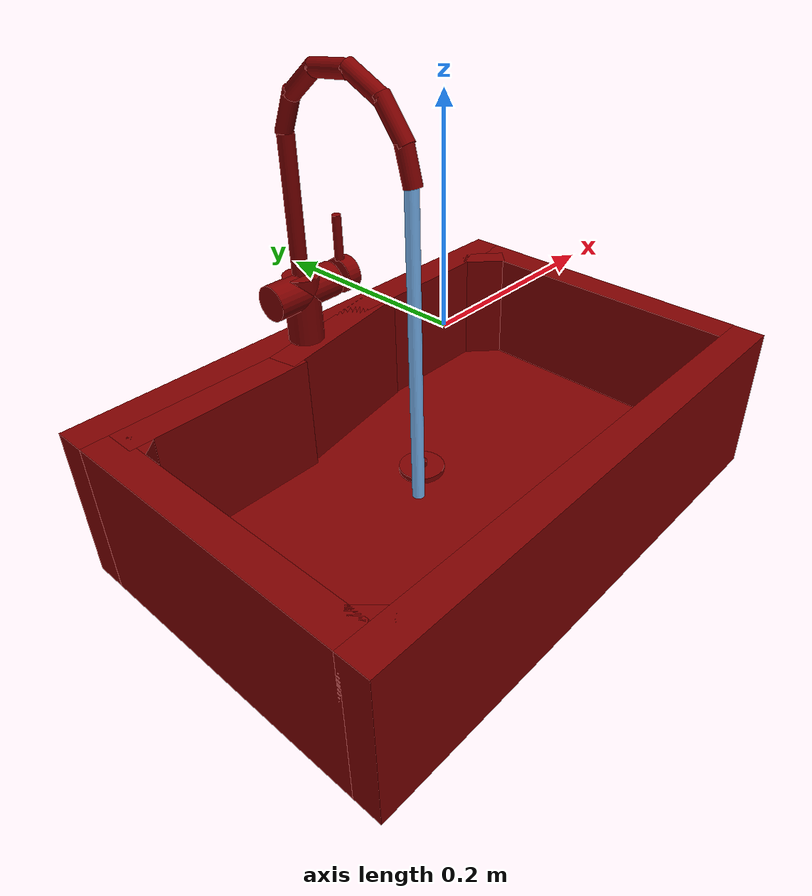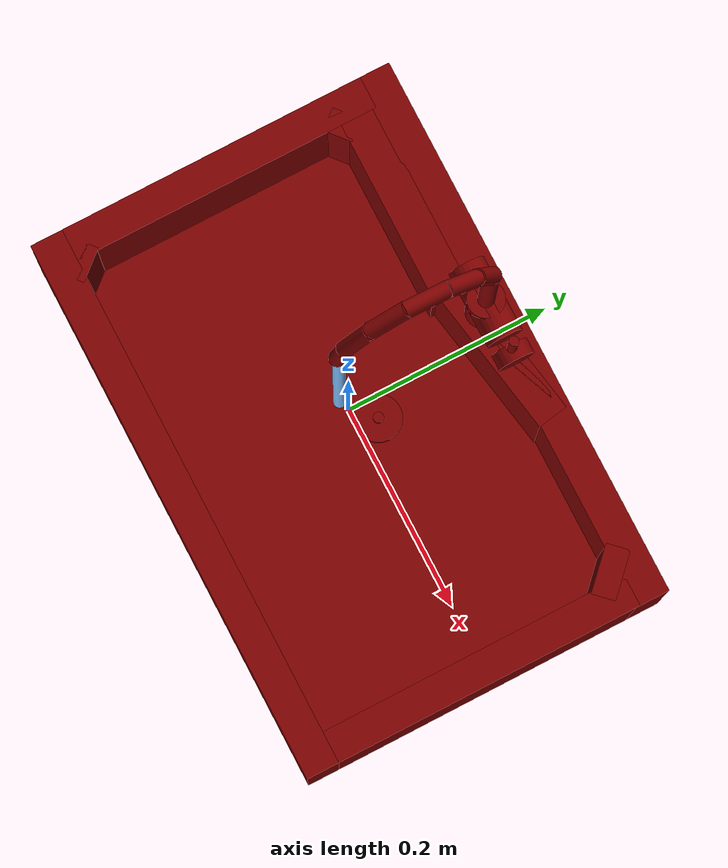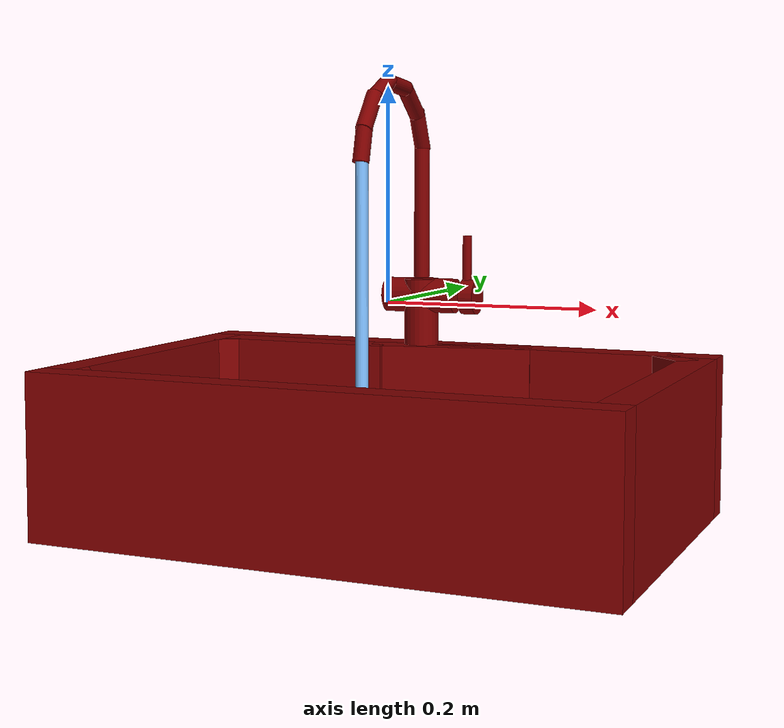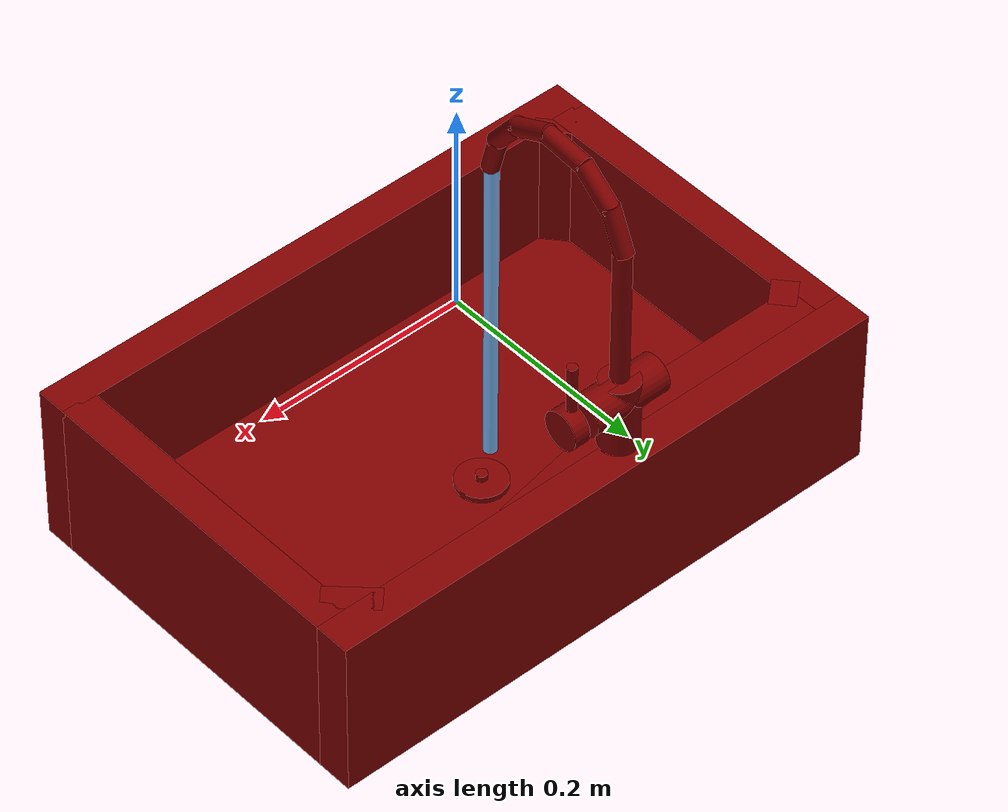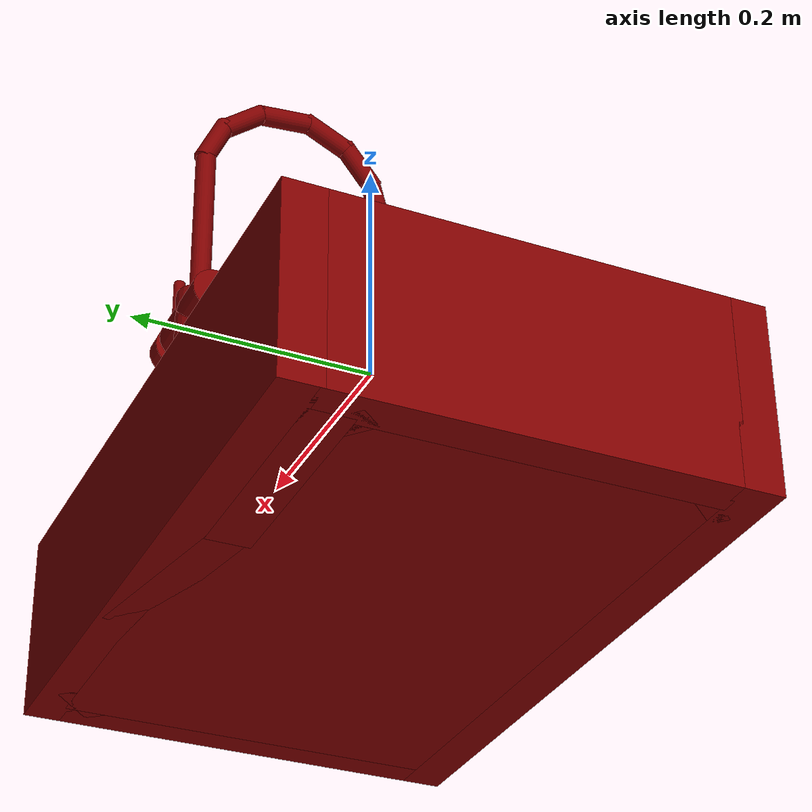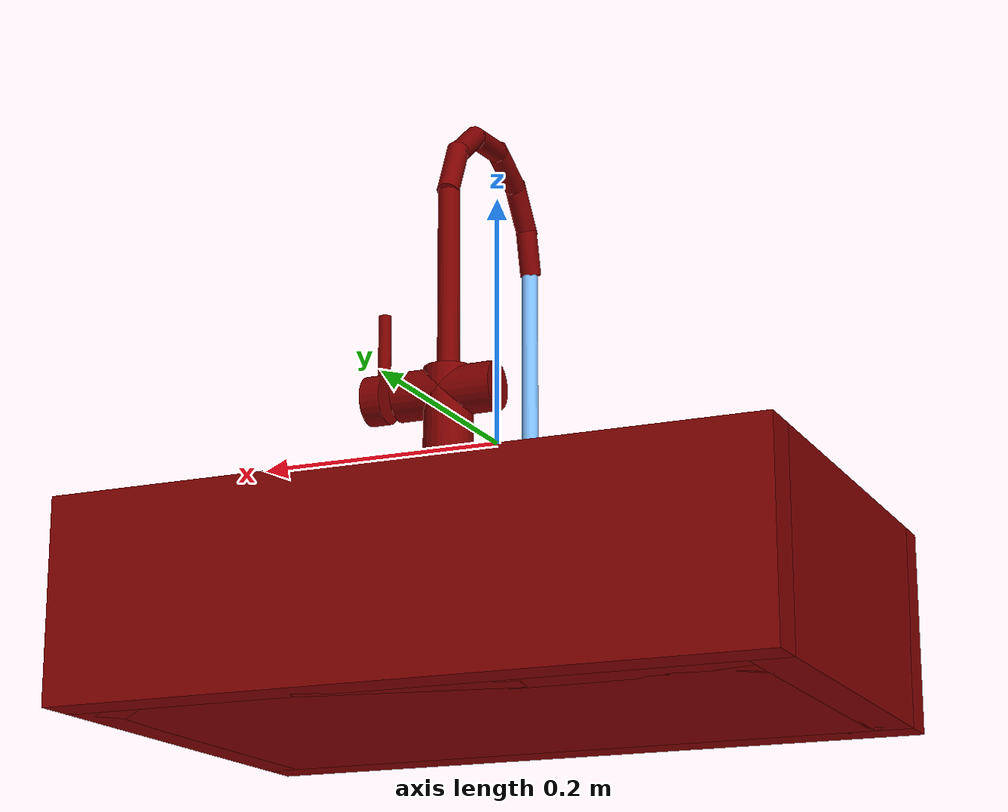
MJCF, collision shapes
<mujoco model="model">
  <compiler angle="radian"/>
  <asset>
    <mesh file="visuals/handle.obj" name="handle_vis"/>
    <mesh file="visuals/Body001.obj" name="Body001_vis"/>
    <mesh file="visuals/Funnel001.obj" name="Funnel001_vis"/>
    <mesh file="visuals/spout.obj" name="spout_vis"/>
    <texture file="visuals/T_BC001.png" name="Body001_material" type="2d"/>
    <material name="Body001_material" rgba="1 1 1 1.0" texture="Body001_material" shininess="0.4472135901451111" specular="0.3103448502657381"/>
    <texture file="visuals/T_BC001.png" name="handle_material" type="2d"/>
    <material name="handle_material" rgba="1 1 1 1.0" texture="handle_material" shininess="0.4472135901451111" specular="0.3103448502657381"/>
    <texture file="visuals/T_BC001.png" name="Funnel001_material" type="2d"/>
    <material name="Funnel001_material" rgba="1 1 1 1.0" texture="Funnel001_material" shininess="0.4472135901451111" specular="0.3103448502657381"/>
    <texture file="visuals/T_BC001.png" name="spout_material" type="2d"/>
    <material name="spout_material" rgba="1 1 1 1.0" texture="spout_material" shininess="0.4472135901451111" specular="0.3103448502657381"/>
  </asset>
  <default>
    <default class="visual">
      <geom conaffinity="0" contype="0" group="1" type="mesh"/>
    </default>
    <default class="collision">
      <geom group="0" rgba="0.5 0 0 0.5"/>
    </default>
    <default class="spawn">
      <geom group="0" rgba="1 1 1 0.5" contype="0" conaffinity="0"/>
      <site group="0" rgba="1 1 1 0.5"/>
    </default>
    <default class="region">
      <geom group="1" conaffinity="0" contype="0" rgba="0 1 0 0"/>
    </default>
  </default>
  <worldbody>
    <body>
      <body name="object">
        <geom mesh="Body001_vis" type="mesh" solimp="0.998 0.998 0.001" solref="0.001 1" density="100" friction="0.95 0.3 0.1" class="visual" material="Body001_material"/>
        <geom class="collision" type="box" pos="1.4057150110602379e-08 -0.16959254443645477 -0.13596001267433167" size="0.27581730484962463 0.01626265048980713 0.07840858399868011" quat="1.0 0.0 0.0 0.0"/>
        <geom class="collision" type="box" pos="-0.2598166763782501 -0.00048828125 -0.13596001267433167" size="0.016000591218471527 0.1563325673341751 0.07840858399868011" quat="1.0 0.0 0.0 0.0"/>
        <geom class="collision" type="box" pos="1.4057150110602379e-08 0.16901056468486786 -0.13596001267433167" size="0.27581730484962463 0.016844628378748894 0.07840858399868011" quat="1.0 0.0 0.0 0.0"/>
        <geom class="collision" type="box" pos="-0.15590538084506989 0.137120321393013 -0.13596001267433167" size="0.09381996095180511 0.017615949735045433 0.07840858399868011" quat="1.0 0.0 0.0 0.0"/>
        <geom class="collision" type="box" pos="0.0037353523075580597 0.15152469277381897 -0.13596001267433167" size="0.08369666337966919 0.01544155739247799 0.07840858399868011" quat="0.9960950613021851 0.0 0.0 0.08828743547201157"/>
        <geom class="collision" type="box" pos="0.25998401641845703 -0.00048828125 -0.13596001267433167" size="0.015833253040909767 0.1563325673341751 0.07840857654809952" quat="1.0 0.0 0.0 0.0"/>
        <geom class="collision" type="box" pos="-0.2439178228378296 0.12083550542593002 -0.13596001267433167" size="0.014547471888363361 0.011633210815489292 0.07840857654809952" quat="0.9380559325218201 0.0 0.0 0.34648385643959045"/>
        <geom class="collision" type="box" pos="-0.23990249633789062 -0.14929364621639252 -0.13596001267433167" size="0.007563177030533552 0.01742745377123356 0.07840858399868011" quat="0.9380559325218201 0.0 0.0 0.34648385643959045"/>
        <geom class="collision" type="box" pos="0.23624864220619202 0.14649027585983276 -0.13596001267433167" size="0.02430211752653122 0.011633211746811867 0.07840857654809952" quat="0.9271064400672913 0.0 0.0 -0.37479814887046814"/>
        <geom class="collision" type="box" pos="0.001804158091545105 0.0025504976511001587 -0.19704565405845642" size="0.24809125065803528 0.15592600405216217 0.017322935163974762" quat="1.0 0.0 0.0 0.0"/>
        <geom class="collision" type="cylinder" pos="-0.030668478459119797 0.15602917969226837 -0.006646901369094849" size="0.01782768778502941 0.037851620465517044" quat="0.7071068286895752 0.0 -0.7071067690849304 0.0"/>
        <geom class="collision" type="cylinder" pos="-0.030807096511125565 0.15602917969226837 -0.023696957156062126" size="0.01782768778502941 0.034247539937496185" quat="1.0 0.0 0.0 0.0"/>
        <body name="handle">
          <joint axis="1.0 0.0 0.0" pos="0.0211646631360054 0.15571454167366028 -0.006675109267234802" limited="true" name="handle_joint_hinge_0" type="hinge" range="-0.7853981633974483 0.7853981633974483" damping="1" frictionloss="1" armature=".01" stiffness="0.01" springref="-0.01"/>
          <joint axis="0.0 1.0 0.0" pos="0.0211646631360054 0.15571454167366028 -0.006675109267234802" limited="true" name="handle_joint_hinge_1" type="hinge" range="0.0 0.17453292519943295" damping="1" frictionloss="1" armature=".01" stiffness="0.05"/>
          <geom mesh="handle_vis" type="mesh" solimp="0.998 0.998 0.001" solref="0.001 1" density="100" friction="0.95 0.3 0.1" class="visual" material="handle_material"/>
          <geom class="collision" type="cylinder" pos="0.023262593895196915 0.15571820735931396 -0.00680498918518424" size="0.01793336682021618 0.00752879586070776" quat="0.7071068286895752 0.0 -0.7071067690849304 0.0"/>
          <geom class="collision" type="cylinder" pos="0.0195927694439888 0.15583795309066772 0.03269347548484802" size="0.004669872112572193 0.023161819204688072" quat="1.0 0.0 0.0 0.0"/>
        </body>
        <body name="Funnel001">
          <joint axis="0.0 0.0 1.0" pos="0.0009632930159568787 0.031146809458732605 -0.17322100698947906" limited="true" name="Funnel001_joint" range="0.0 0.05" type="slide" damping="1" frictionloss="1" armature=".01" stiffness="0.05" springref="-18"/>
          <geom mesh="Funnel001_vis" type="mesh" solimp="0.998 0.998 0.001" solref="0.001 1" density="100" friction="0.95 0.3 0.1" class="visual" material="Funnel001_material"/>
          <geom class="collision" type="cylinder" pos="0.0010033994913101196 0.031286291778087616 -0.17625391483306885" size="0.023134859278798103 0.0028115231543779373" quat="1.0 0.0 0.0 0.0"/>
          <geom class="collision" type="cylinder" pos="0.0010033994913101196 0.031286291778087616 -0.17069317400455475" size="0.005248609464615583 0.00307882996276021" quat="1.0 0.0 0.0 0.0"/>
        </body>
        <body name="spout">
          <joint axis="0.0 0.0 1.0" pos="-0.030478890985250473 0.1558258831501007 0.10708253085613251" limited="true" name="spout_joint" range="-0.7853981633974483 0.7853981633974483" type="hinge" damping="1" frictionloss="1" armature=".01" stiffness="0.01" springref="-0.01"/>
          <site type="cylinder" rgba="0.5 0.75 1 1" size="0.006173485890030861 0.15829496085643768" pos="-0.030343852937221527 0.006556212902069092 -0.026110395789146423" name="water"/>
          <geom mesh="spout_vis" type="mesh" solimp="0.998 0.998 0.001" solref="0.001 1" density="100" friction="0.95 0.3 0.1" class="visual" material="spout_material"/>
          <geom class="collision" type="cylinder" pos="-0.03048618510365486 0.15583795309066772 0.07846492528915405" size="0.008071539923548698 0.06615273654460907" quat="1.0 0.0 0.0 0.0"/>
          <geom class="collision" type="cylinder" pos="-0.03048618510365486 0.14937466382980347 0.16299808025360107" size="0.008071539923548698 0.02138448879122734" quat="0.9780362844467163 0.20843477547168732 0.0 0.0"/>
          <geom class="collision" type="cylinder" pos="-0.03048618510365486 0.12654130160808563 0.19124218821525574" size="0.008071539923548698 0.02138448879122734" quat="0.902644693851471 0.43038657307624817 0.0 0.0"/>
          <geom class="collision" type="cylinder" pos="-0.03048618510365486 0.05284687131643295 0.20033225417137146" size="0.008071539923548698 0.02138448879122734" quat="0.5306106805801392 0.847615659236908 0.0 0.0"/>
          <geom class="collision" type="cylinder" pos="-0.03048618510365486 0.0910467728972435 0.20563477277755737" size="0.008071539923548698 0.02138449065387249" quat="0.7420269846916199 0.6703700423240662 0.0 0.0"/>
          <geom class="collision" type="cylinder" pos="-0.03048618510365486 0.023918822407722473 0.17762872576713562" size="0.008071539923548698 0.02138448879122734" quat="0.32088765501976013 0.947117269039154 0.0 0.0"/>
          <geom class="collision" type="cylinder" pos="-0.03048618510365486 0.009142711758613586 0.14683791995048523" size="0.008071539923548698 0.017457736656069756" quat="0.12741568684577942 0.991849422454834 0.0 0.0"/>
        </body>
        <geom class="region" name="reg_main" type="box" pos="0.0 0.0 -0.13596001267433167" size="0.27581727504730225 0.1858551949262619 0.07840857654809952"/>
        <geom class="region" name="reg_basin" type="box" pos="0.0009905323386192322 -0.017673082649707794 -0.12237532436847687" size="0.23980366438627243 0.1300724521279335 0.05823276937007904"/>
      </body>
    </body>
  </worldbody>
  <actuator>
    <motor name="handle_joint_hinge_0_actuator" joint="handle_joint_hinge_0" gear="10"/>
    <motor name="handle_joint_hinge_1_actuator" joint="handle_joint_hinge_1" gear="10"/>
    <motor name="Funnel001_joint_actuator" joint="Funnel001_joint" gear="10"/>
    <motor name="spout_joint_actuator" joint="spout_joint" gear="10"/>
  </actuator>
</mujoco>
